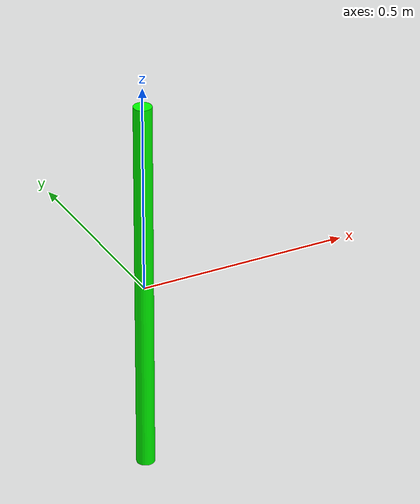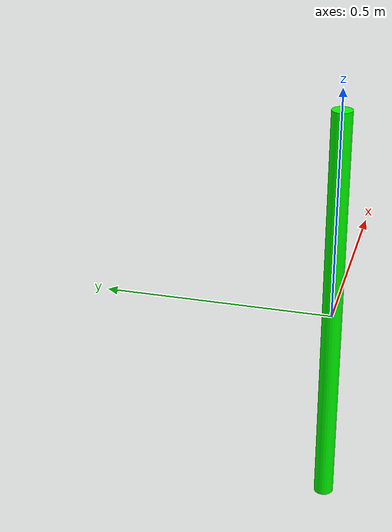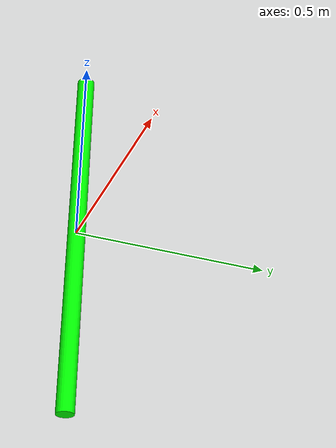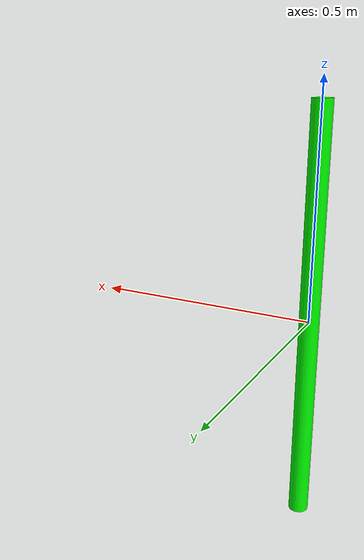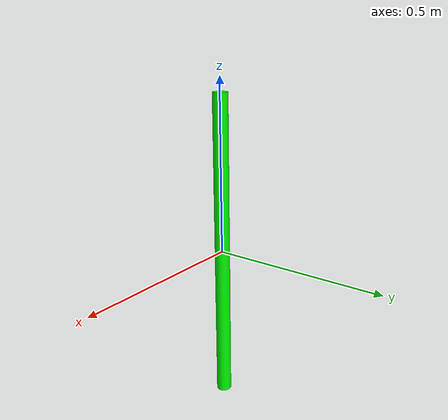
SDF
<?xml version="1.0" ?>
<sdf version="1.7">
    <model name="pool_noodle">
        <pose>0 0 0 0 0 0</pose>
        <link name="noodle">
            <inertial>
                <mass>0.2</mass>
                <inertia>
                    <ixx>0.0001</ixx>
                    <ixy>0.0</ixy>
                    <ixz>0.0</ixz>
                    <iyy>0.0001</iyy>
                    <iyz>0.0</iyz>
                    <izz>0.0002</izz>
                </inertia>
            </inertial>
            <collision name="collision">
                <geometry>
                    <cylinder>
                        <radius>0.02159</radius>
                        <length>0.9144</length>
                    </cylinder>
                </geometry>
            </collision>
            <visual name="visual">
                <geometry>
                    <cylinder>
                        <radius>0.02159</radius>
                        <length>0.9144</length>
                    </cylinder>
                </geometry>
                <material>
                    <ambient>0.0 1.0 0.0 1</ambient>
                    <diffuse>0.0 1.0 0.0 1</diffuse>
                    <specular>0.1 0.1 0.1 1</specular>
                </material>
            </visual>
            <!-- Additional features available in SDF 1.7 can be added here -->
        </link>
        <!-- Additional link, joint, sensor definitions, etc., can be added here -->
    </model>
</sdf>
